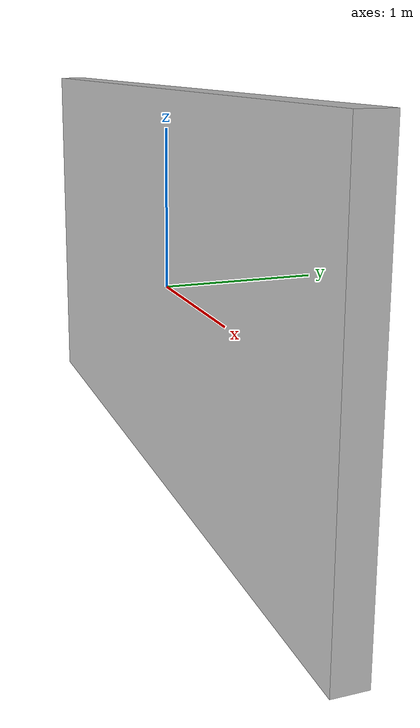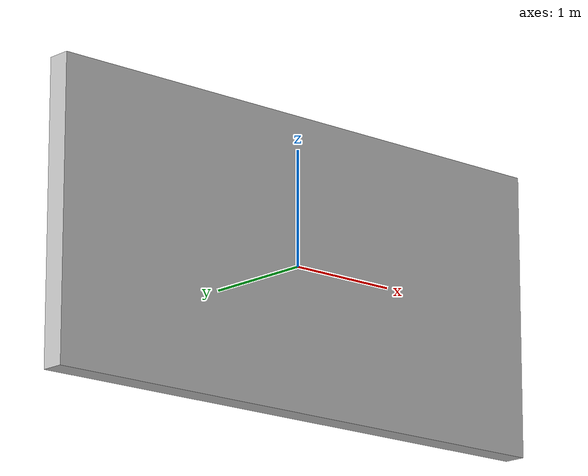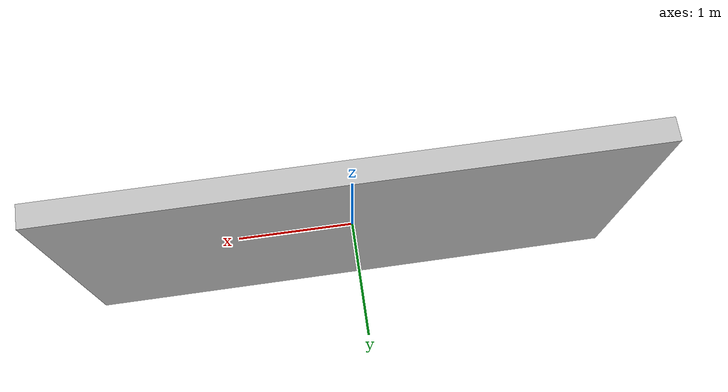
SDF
<?xml version="1.0"?>
<sdf version="1.5">
  <model name="Wall">
    <static>true</static>
    <link name="link">
      <pose>0 0 0 0 0 0</pose>
        <visual name="visual">
          <geometry>
            <box>
              <size>5.0 0.2 2.5</size>
            </box>
          </geometry>
          <material>
            <ambient>0.75 0.75 0.75 1.0</ambient>
            <diffuse>0.75 0.75 0.75 1.0</diffuse>
            <specular>0.0 0.0 0.0 1.0</specular>
            <emissive>0.0 0.0 0.0 1.0</emissive>
          </material>
        </visual>
        <collision name="collision">
          <geometry>
            <box>
              <size>5.0 0.2 2.5</size>
            </box>
          </geometry>
        </collision>
    </link>
  </model>
</sdf>
